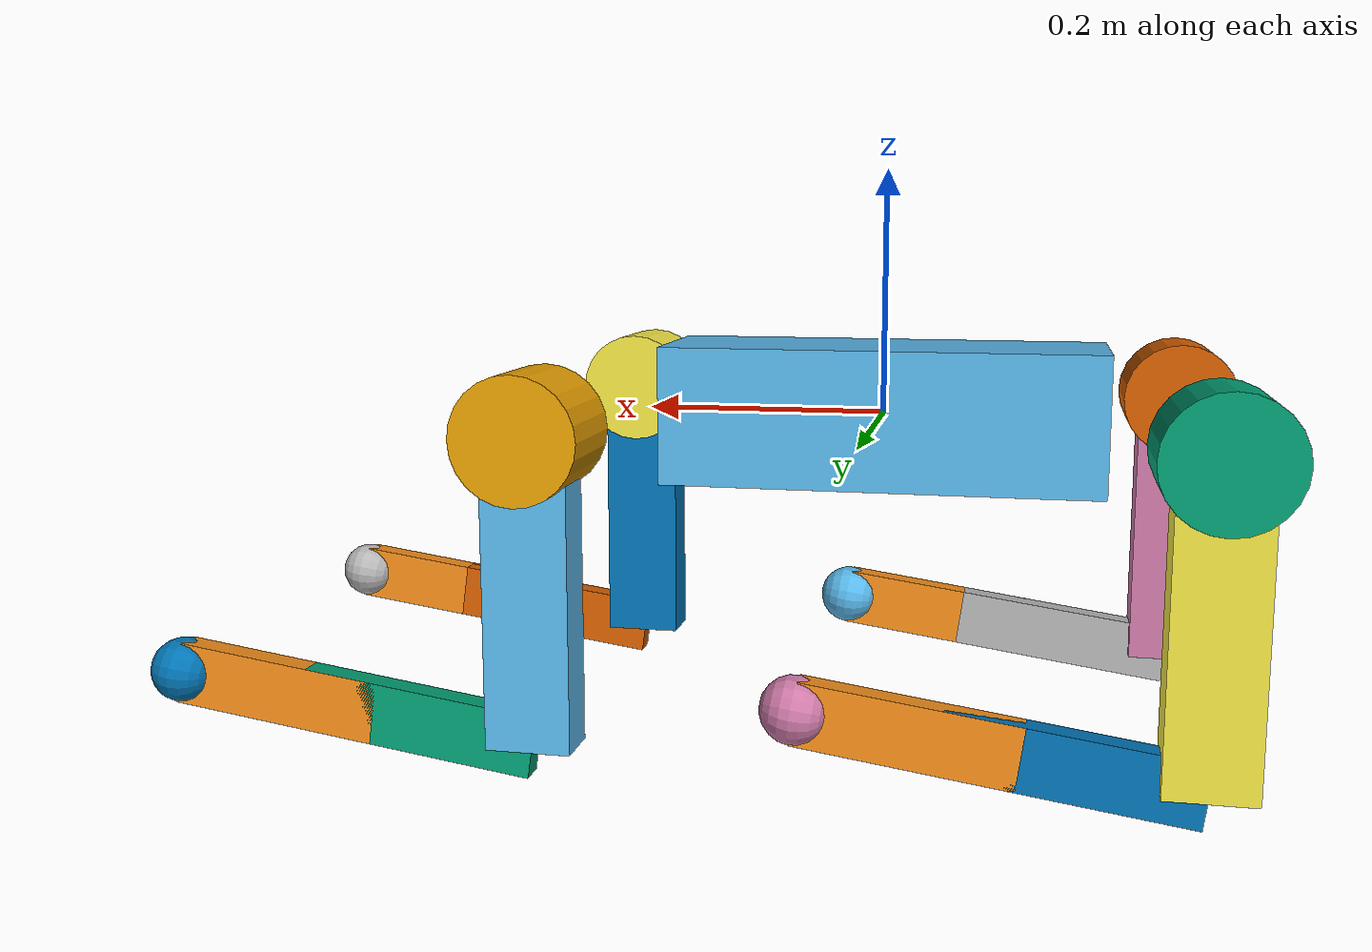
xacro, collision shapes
<?xml version="1.0"?>

<robot name="arcdog_adjustable_leg" xmlns:xacro="http://www.ros.org/wiki/xacro">

	<xacro:arg name="DEBUG" default="false"/>
	<xacro:arg name="GAZEBO" default="false"/>
	<xacro:arg name="CLASSIC" default="false"/>

	<xacro:include filename="$(find arcdog_adjustable_leg_description)/xacro/const.xacro"/>
	<xacro:include filename="$(find arcdog_adjustable_leg_description)/xacro/materials.xacro"/>
	<xacro:include filename="$(find arcdog_adjustable_leg_description)/xacro/leg.xacro"/>

	<xacro:if value="$(arg GAZEBO)">
		<xacro:if value="$(arg CLASSIC)">
			<xacro:include filename="$(find arcdog_adjustable_leg_description)/xacro/gazebo_classic.xacro"/>
		</xacro:if>
		<xacro:unless value="$(arg CLASSIC)">
			<xacro:include filename="$(find arcdog_adjustable_leg_description)/xacro/gazebo.xacro"/>
		</xacro:unless>
	</xacro:if>
	<xacro:unless value="$(arg GAZEBO)">
		<xacro:include filename="$(find arcdog_adjustable_leg_description)/xacro/ros2_control.xacro"/>
	</xacro:unless>

	<!-- Rotor related joint and link is only for demonstrate location. -->
	<!-- Actually, the rotor will rotate and the joint is not fixed. Reduction ratio should be considered. -->

	<!-- Debug mode will hung up the robot, use "true" or "false" to switch it. -->
	<xacro:if value="$(arg DEBUG)">
		<link name="world"/>
		<joint name="base_static_joint" type="fixed">
			<origin rpy="0 0 0" xyz="0 0 0"/>
			<parent link="world"/>
			<child link="base"/>
		</joint>
	</xacro:if>

	<link name="base">
		<visual>
			<origin rpy="0 0 0" xyz="0 0 0"/>
			<geometry>
				<box size="0.001 0.001 0.001"/>
			</geometry>
		</visual>
	</link>

	<joint name="floating_base" type="fixed">
		<origin rpy="0 0 0" xyz="0 0 0"/>
		<parent link="base"/>
		<child link="trunk"/>
	</joint>

	<link name="trunk">
		<visual>
			<origin rpy="0 0 0" xyz="0 0 0"/>
			<geometry>
				<mesh filename="file://$(find arcdog_adjustable_leg_description)/meshes/trunk1.dae" scale="1 1 1"/>
			</geometry>
		</visual>
		<collision>
			<origin rpy="0 0 0" xyz="0 0 0"/>
			<geometry>
				<box size="${trunk_length} ${trunk_width} ${trunk_height}"/>
			</geometry>
		</collision>
		<inertial>
			<origin rpy="0 0 0" xyz="${trunk_com_x} ${trunk_com_y} ${trunk_com_z}"/>
			<mass value="${trunk_mass}"/>
			<inertia
							ixx="${trunk_ixx}" ixy="${trunk_ixy}" ixz="${trunk_ixz}"
							iyy="${trunk_iyy}" iyz="${trunk_iyz}"
							izz="${trunk_izz}"/>
		</inertial>
	</link>

	<joint name="imu_joint" type="fixed">
		<parent link="trunk"/>
		<child link="imu_link"/>
		<origin rpy="0 0 0" xyz="0 0 0"/>
	</joint>

	<link name="imu_link">
		<inertial>
			<mass value="0.001"/>
			<origin rpy="0 0 0" xyz="0 0 0"/>
			<inertia ixx="0.0001" ixy="0" ixz="0" iyy="0.0001" iyz="0" izz="0.0001"/>
		</inertial>
		<visual>
			<origin rpy="0 0 0" xyz="0 0 0"/>
			<geometry>
				<box size="0.001 0.001 0.001"/>
			</geometry>
		</visual>
		<collision>
			<origin rpy="0 0 0" xyz="0 0 0"/>
			<geometry>
				<box size=".001 .001 .001"/>
			</geometry>
		</collision>
	</link>
	<xacro:leg name="FR" mirror="-1" mirror_dae="False" front_hind="1" front_hind_dae="True"/>
	<xacro:leg name="FL" mirror="1" mirror_dae="True" front_hind="1" front_hind_dae="True"/>
	<xacro:leg name="RR" mirror="-1" mirror_dae="False" front_hind="-1" front_hind_dae="False"/>
	<xacro:leg name="RL" mirror="1" mirror_dae="True" front_hind="-1" front_hind_dae="False"/>
</robot>

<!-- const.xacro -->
<robot xmlns:xacro="http://www.ros.org/wiki/xacro" name="arcdog_adjustable_leg_description">

	<!-- Constants for robot dimensions -->
	<xacro:property name="PI" value="3.1415926535897931"/>
	<xacro:property name="stick_mass" value="0.00001"/>

	<!-- simplified collision value -->
    <xacro:property name="trunk_width" value="0.121"/>
    <xacro:property name="trunk_length" value="0.361"/>
    <xacro:property name="trunk_height" value="0.114"/>
    <xacro:property name="hip_radius" value="0.0495"/>
    <xacro:property name="hip_length" value=" 0.0834"/>
    <xacro:property name="thigh_shoulder_radius" value="0.0495"/>
    <xacro:property name="thigh_shoulder_length" value="0.03826"/>
    <xacro:property name="thigh_width" value="0.040"/>
    <xacro:property name="thigh_height" value="0.06797"/>
    <xacro:property name="calf_width" value="0.02"/>
    <xacro:property name="calf_height" value="0.05"/>
    <xacro:property name="foot_radius" value="0.0265"/>
    <xacro:property name="stick_radius" value="?"/> //TODO
	<xacro:property name="stick_length" value="?"/> //TODO

    <!-- kinematic value -->
    <xacro:property name="thigh_offset" value="0.11475"/>
    <xacro:property name="thigh_length" value="0.245"/>
    <xacro:property name="calf_length" value="0.1930"/>

    <!-- leg offset from trunk center value -->
    <xacro:property name="leg_offset_x" value="0.2515"/>
    <xacro:property name="leg_offset_y" value="0.0605"/>
    <xacro:property name="trunk_offset_z" value="0.01675"/> //TODO
    <xacro:property name="hip_offset" value="0.11475"/> //go2 special point, puting hip collision model at thigh position
	<!-- offset of link locations (left front) -->
    <xacro:property name="hip_offset_x" value="?"/> //TODO
	<xacro:property name="hip_offset_y" value="?"/> //TODO
	<xacro:property name="hip_offset_z" value="?"/> //TODO

	<xacro:property name="thigh_offset_x" value="?"/> //TODO
	<xacro:property name="thigh_offset_y" value="?"/> //TODO
	<xacro:property name="thigh_offset_z" value="?"/> //TODO

	<xacro:property name="calf_offset_x" value="?"/> //TODO
	<xacro:property name="calf_offset_y" value="?"/> //TODO
	<xacro:property name="calf_offset_z" value="?"/> //TODO

    <!-- joint limits -->
    <xacro:property name="damping" value="0.05"/>
    <xacro:property name="friction" value="0.01"/>
    <xacro:property name="hip_position_max" value="${70*pi/180.0}"/>
    <xacro:property name="hip_position_min" value="${-70*pi/180.0}"/>
    <xacro:property name="hip_velocity_max" value="20"/>
    <xacro:property name="hip_torque_max" value="35.278"/>
    <xacro:property name="thigh_position_max" value="3.4907"/>
    <xacro:property name="thigh_position_min" value="-1.5708"/>
    <xacro:property name="thigh_velocity_max" value="20"/>
    <xacro:property name="thigh_torque_max" value="35.278"/>
    <xacro:property name="calf_position_max" value="${-37*pi/180.0}"/>
    <xacro:property name="calf_position_min" value="${-159*pi/180.0}"/>
    <xacro:property name="calf_velocity_max" value="15.89"/>
    <xacro:property name="calf_torque_max" value="44.4"/>

    <!-- dynamics inertial value    total 22.0kg-->
    <!-- trunk -->
    <xacro:property name="trunk_mass" value="5.742"/>
    <xacro:property name="trunk_com_x" value="-0.002250"/>
    <xacro:property name="trunk_com_y" value="0.000116"/>
    <xacro:property name="trunk_com_z" value="-0.001452"/>
    <xacro:property name="trunk_ixx" value="0.037914363"/>
    <xacro:property name="trunk_ixy" value="0.000098848"/>
    <xacro:property name="trunk_ixz" value="-0.000073338"/>
    <xacro:property name="trunk_iyy" value="0.119267297"/>
    <xacro:property name="trunk_iyz" value="0.000013463"/>
    <xacro:property name="trunk_izz" value="0.142804844"/>

    <!-- hip (left front) -->
    <xacro:property name="hip_mass" value="1.108"/>
    <xacro:property name="hip_com_x" value="-0.0082"/>
    <xacro:property name="hip_com_y" value="0.000984"/>
    <xacro:property name="hip_com_z" value="0.000162"/>
    <xacro:property name="hip_ixx" value="0.000972670"/>
    <xacro:property name="hip_ixy" value="0.000004550"/>
    <xacro:property name="hip_ixz" value="0.000000139"/>
    <xacro:property name="hip_iyy" value="0.001754403"/>
    <xacro:property name="hip_iyz" value="0.000001705"/>
    <xacro:property name="hip_izz" value="0.001311138"/>

    <!-- thigh -->
    <xacro:property name="thigh_mass" value="1.636"/>
    <xacro:property name="thigh_com_x" value="-0.004484"/>
    <xacro:property name="thigh_com_y" value="-0.033084"/>
    <xacro:property name="thigh_com_z" value="-0.030728"/>
    <xacro:property name="thigh_ixx" value="0.009596889"/>
    <xacro:property name="thigh_ixy" value="-0.000241414"/>
    <xacro:property name="thigh_ixz" value="0.000789459"/>
    <xacro:property name="thigh_iyy" value="0.009201469"/>
    <xacro:property name="thigh_iyz" value="-0.001676085"/>
    <xacro:property name="thigh_izz" value="0.002385568"/>

    <!-- calf -->
    <xacro:property name="calf_mass" value="0.132"/>
    <xacro:property name="calf_com_x" value="0.0016"/>
    <xacro:property name="calf_com_y" value="0.00438"/>
    <xacro:property name="calf_com_z" value="-0.12232"/>
    <xacro:property name="calf_ixx" value="0.00228050753"/>
    <xacro:property name="calf_ixy" value="-0.00000033551"/>
    <xacro:property name="calf_ixz" value="0.00000826635"/>
    <xacro:property name="calf_iyy" value="0.00225891907"/>
    <xacro:property name="calf_iyz" value="0.00010727008"/>
    <xacro:property name="calf_izz" value="0.00005160443"/>

	<!-- foot -->
	<xacro:property name="foot_mass" value="0.06"/>

    <!-- pricmatic joint -->
    <xacro:property name="box_effort_max" value="50"/>
    <xacro:property name="box_velocity_max" value="50"/>

    <!-- adjustable leg -->
    <xacro:property name="box_length" value="0.1691"/>
    <xacro:property name="box_width" value="0.02"/>
    <xacro:property name="box_height" value="0.05"/>
    <xacro:property name="box_mass" value="0.132"/>
    <xacro:property name="box_ixx" value="0.00228050753"/>
    <xacro:property name="box_iyy" value="0.00225891907"/>
    <xacro:property name="box_izz" value="0.00005160443"/>

</robot>

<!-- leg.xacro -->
<robot xmlns:xacro="http://www.ros.org/wiki/xacro">

    <xacro:include filename="$(find arcdog_adjustable_leg_description)/xacro/transmission.xacro"/>

    <xacro:macro name="leg" params="name mirror mirror_dae front_hind front_hind_dae">

        <joint name="${name}_hip_joint" type="revolute">
			<xacro:if value="${(mirror_dae == False) and (front_hind_dae == True)}">
				<origin rpy="0 0 0" xyz="${leg_offset_x} ${-leg_offset_y} 0"/>
			</xacro:if>
			<xacro:if value="${(mirror_dae == True) and (front_hind_dae == True)}">
				<origin rpy="0 0 0" xyz="${leg_offset_x} ${leg_offset_y} 0"/>
			</xacro:if>
			<xacro:if value="${(mirror_dae == False) and (front_hind_dae == False)}">
				<origin rpy="0 0 0" xyz="${-leg_offset_x} ${-leg_offset_y} 0"/>
			</xacro:if>
			<xacro:if value="${(mirror_dae == True) and (front_hind_dae == False)}">
				<origin rpy="0 0 0" xyz="${-leg_offset_x} ${leg_offset_y} 0"/>
			</xacro:if>
			<parent link="trunk"/>
			<child link="${name}_hip"/>
                <axis xyz="1 0 0"/>
                <dynamics damping="${damping}" friction="${friction}"/>
			<xacro:if value="${(mirror_dae == True)}">
				<limit effort="${hip_torque_max}" velocity="${hip_velocity_max}" lower="${hip_position_min}"
							 upper="${hip_position_max}"/>
			</xacro:if>
			<xacro:if value="${(mirror_dae == False)}">
				<limit effort="${hip_torque_max}" velocity="${hip_velocity_max}" lower="${-hip_position_max}"
							 upper="${-hip_position_min}"/>
                </xacro:if>
            </joint>

        <link name="${name}_hip">
            <visual>
                <xacro:if value="${(mirror_dae == True) and (front_hind_dae == True)}">
                    <origin rpy="0 0 0" xyz="0 0 0"/>
                </xacro:if>
                <xacro:if value="${(mirror_dae == False) and (front_hind_dae == True)}">
                    <origin rpy="${PI} 0 0" xyz="0 0 0"/>
                </xacro:if>
                <xacro:if value="${(mirror_dae == True) and (front_hind_dae == False)}">
                    <origin rpy="0 ${PI} 0" xyz="0 0 0"/>
                </xacro:if>
                <xacro:if value="${(mirror_dae == False) and (front_hind_dae == False)}">
                    <origin rpy="${PI} ${PI} 0" xyz="0 0 0"/>
                </xacro:if>
                <geometry>
                    <mesh filename="package://arcdog_adjustable_leg_description/meshes/hip.stl"
                          scale="1 1 1"/>
                </geometry>
            </visual>
            <collision>
                <origin rpy="${PI/2.0} 0 0" xyz="0 ${hip_offset*mirror} 0"/>
                <geometry>
                    <cylinder length="${hip_length}" radius="${hip_radius}"/>
                </geometry>
            </collision>
            <inertial>
                <origin rpy="0 0 0" xyz="${hip_com_x*front_hind} ${hip_com_y*mirror} ${hip_com_z}"/>
                <mass value="${hip_mass}"/>
                <inertia
                        ixx="${hip_ixx}" ixy="${hip_ixy*mirror*front_hind}" ixz="${hip_ixz*front_hind}"
                        iyy="${hip_iyy}" iyz="${hip_iyz*mirror}"
                        izz="${hip_izz}"/>
            </inertial>
        </link>

		<joint name="${name}_thigh_joint" type="revolute">
			<origin rpy="0 0 0" xyz="0 ${thigh_offset*mirror} 0"/>
			<parent link="${name}_hip"/>
			<child link="${name}_thigh"/>
			<axis xyz="0 1 0"/>
			<dynamics damping="${damping}" friction="${friction}"/>
			<limit effort="${thigh_torque_max}" velocity="${thigh_velocity_max}" lower="${thigh_position_min}"
						 upper="${thigh_position_max}"/>
		</joint>

        <link name="${name}_thigh">
            <visual>
                <origin rpy="0 0 0" xyz="0 0 0"/>
                <geometry>
                    <xacro:if value="${mirror_dae == True}">
                        <mesh filename="package://arcdog_adjustable_leg_description/meshes/thigh.stl" scale="1 1 1"/>
                    </xacro:if>
                    <xacro:if value="${mirror_dae == False}">
                        <mesh filename="package://arcdog_adjustable_leg_description/meshes/thigh_mirror.stl" scale="1 1 1"/>
                    </xacro:if>
                </geometry>
            </visual>
            <collision>
                <origin rpy="0 ${PI/2.0} 0" xyz="0 0 ${-thigh_length/2.0}"/>
                <geometry>
                    <box size="${thigh_length} ${thigh_width} ${thigh_height}"/>
                </geometry>
            </collision>
            <inertial>
                <origin rpy="0 0 0" xyz="${thigh_com_x} ${thigh_com_y*mirror} ${thigh_com_z}"/>
                <mass value="${thigh_mass}"/>
                <inertia
                        ixx="${thigh_ixx}" ixy="${thigh_ixy*mirror}" ixz="${thigh_ixz}"
                        iyy="${thigh_iyy}" iyz="${thigh_iyz*mirror}"
                        izz="${thigh_izz}"/>
            </inertial>
        </link>

		<joint name="${name}_calf_joint" type="revolute">
			<origin rpy="0 0 0" xyz="0 0 ${-thigh_length}"/>
			<parent link="${name}_thigh"/>
			<child link="${name}_calf"/>
			<axis xyz="0 1 0"/>
			<dynamics damping="${damping}" friction="${friction}"/>
			<limit effort="${calf_torque_max}" velocity="${calf_velocity_max}" lower="${calf_position_min}"
						 upper="${calf_position_max}"/>
		</joint>

        <link name="${name}_calf">
            <visual>
                <origin rpy="0 0 0" xyz="0 0 0"/>
                <geometry>
                    <mesh filename="package://arcdog_adjustable_leg_description/meshes/calf.stl" scale="1 1 1"/>
                </geometry>
            </visual>
            <collision>
                <origin rpy="0 ${PI/2.0} 0" xyz="0 0 ${-calf_length/2.0}"/>
                <geometry>
                    <box size="${calf_length} ${calf_width} ${calf_height}"/>
                </geometry>
            </collision>
            <inertial>
                <origin rpy="0 0 0" xyz="${calf_com_x} ${calf_com_y} ${calf_com_z}"/>
                <mass value="${calf_mass}"/>
                <inertia
                        ixx="${calf_ixx}" ixy="${calf_ixy}" ixz="${calf_ixz}"
                        iyy="${calf_iyy}" iyz="${calf_iyz}"
                        izz="${calf_izz}"/>
            </inertial>
        </link>

        <!-- 在 calf 和 foot 之间添加 box link -->
        <link name="${name}_box">
            <visual>
                <origin rpy="0 0 0" xyz="0 0 0"/>
                <geometry>
                    <mesh filename="package://arcdog_adjustable_leg_description/assets/adjustable_leg.stl"
                          scale="1 1 1"/>
                </geometry>
                <material name="orange"/>
            </visual>
            <collision>
                <origin rpy="0 ${PI/2.0} 0" xyz="0 0 ${-box_length/2.0}"/>
                <geometry>
                    <box size="${box_length} ${box_width} ${box_height}"/>
                </geometry>
            </collision>
            <inertial>
                <origin rpy="0 0 0" xyz="0 0 ${-box_length/2.0}"/>
                <mass value="${box_mass}"/> <!-- 定义 box 的质量 -->
                <inertia
                    ixx="${box_ixx}" ixy="0" ixz="0"
                    iyy="${box_iyy}" iyz="0"
                    izz="${box_izz}"/>
            </inertial>
        </link>

        <!-- 添加 prismatic joint -->
        <joint name="${name}_box_joint" type="prismatic">
            <origin rpy="0 0 0" xyz="0 0 -0.133"/> <!-- 根据 calf 的长度调整位置 -->
            <parent link="${name}_calf"/>
            <child link="${name}_box"/>
            <axis xyz="0 0 1"/> <!-- 定义滑动轴 -->
            <dynamics damping="${damping}" friction="${friction}"/>
            <limit effort="${box_effort_max}" velocity="${box_velocity_max}" lower="0" upper="0.06"/> <!-- 定义限制条件 -->
        </joint>

        <joint name="${name}_foot_fixed" type="fixed">
            <origin rpy="0 0 0" xyz="0 0 ${-box_length}"/> <!-- 连接到 box 的底部 -->
            <parent link="${name}_box"/>
            <child link="${name}_foot"/>
        </joint>

        <link name="${name}_foot">
            <visual>
                <origin rpy="0 0 0" xyz="0 0 0"/>
                <geometry>
                    <sphere radius="${foot_radius-0.01}"/>
                </geometry>
            </visual>
            <collision>
                <origin rpy="0 0 0" xyz="0 0 0"/>
                <geometry>
                    <sphere radius="${foot_radius}"/>
                </geometry>
            </collision>
            <inertial>
                <mass value="${foot_mass}"/>
                <inertia
                        ixx="${(2*foot_mass)/5.0*(foot_radius*foot_radius)}" ixy="0.0" ixz="0.0"
                        iyy="${(2*foot_mass)/5.0*(foot_radius*foot_radius)}" iyz="0.0"
                        izz="${(2*foot_mass)/5.0*(foot_radius*foot_radius)}"/>
            </inertial>
        </link>

        <xacro:leg_transmission name="${name}"/>
    </xacro:macro>
</robot>
